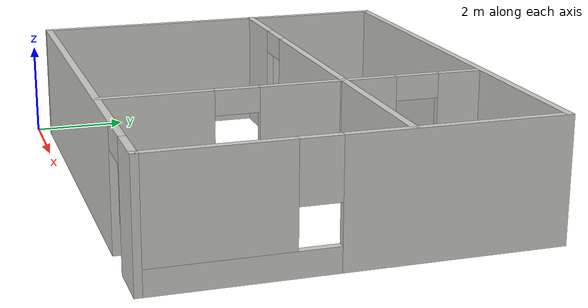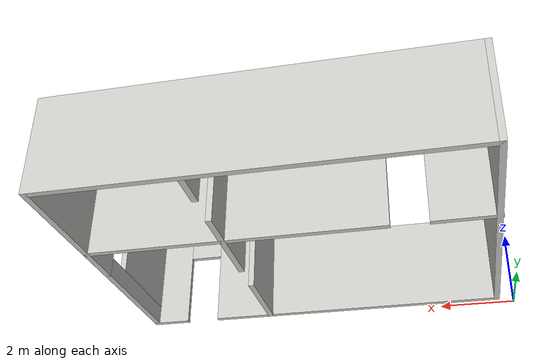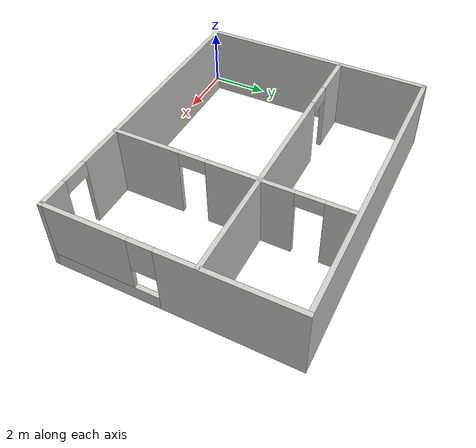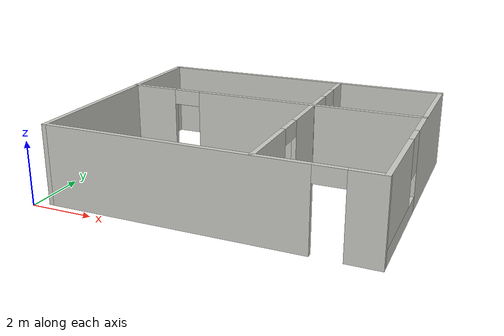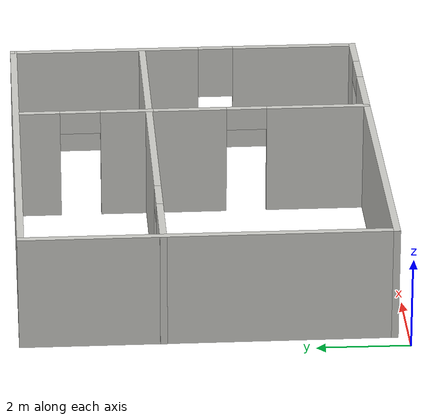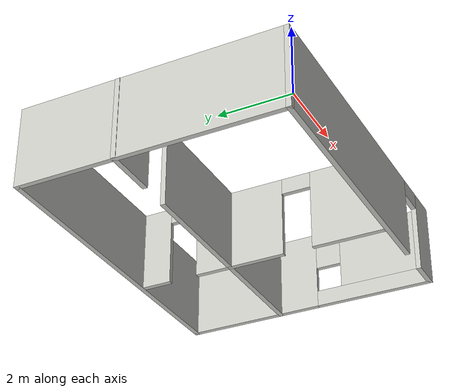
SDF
<?xml version='1.0'?>
<sdf version='1.6'>
  <model name='mybuilding'>
    <pose frame=''>5.19709 4.11693 0 0 -0 0</pose>
    <link name='Wall_10'>
      <pose frame=''>5.12209 0.116931 0 0 -0 -1.5708</pose>
      <visual name='Wall_10_Visual_0'>
        <pose frame=''>-1.82831 0 1.25 0 -0 0</pose>
        <geometry>
          <box>
            <size>4.34337 0.15 2.5</size>
          </box>
        </geometry>
        <material>
          <script>
            <uri>file://media/materials/scripts/gazebo.material</uri>
            <name>Gazebo/CeilingTiled</name>
          </script>
          <ambient>0.996078 0.47451 0.0196078 1</ambient>
        </material>
        <meta>
          <layer>0</layer>
        </meta>
      </visual>
      <collision name='Wall_10_Collision_0'>
        <geometry>
          <box>
            <size>4.34337 0.15 2.5</size>
          </box>
        </geometry>
        <pose frame=''>-1.82831 0 1.25 0 -0 0</pose>
      </collision>
      <visual name='Wall_10_Visual_1'>
        <pose frame=''>2.17169 0 0.25 0 -0 0</pose>
        <geometry>
          <box>
            <size>3.65663 0.15 0.5</size>
          </box>
        </geometry>
        <material>
          <script>
            <uri>file://media/materials/scripts/gazebo.material</uri>
            <name>Gazebo/CeilingTiled</name>
          </script>
          <ambient>0.996078 0.47451 0.0196078 1</ambient>
        </material>
        <meta>
          <layer>0</layer>
        </meta>
      </visual>
      <collision name='Wall_10_Collision_1'>
        <geometry>
          <box>
            <size>3.65663 0.15 0.5</size>
          </box>
        </geometry>
        <pose frame=''>2.17169 0 0.25 0 -0 0</pose>
      </collision>
      <visual name='Wall_10_Visual_2'>
        <pose frame=''>2.57168 0 1.5 0 -0 0</pose>
        <geometry>
          <box>
            <size>2.85663 0.15 2</size>
          </box>
        </geometry>
        <material>
          <script>
            <uri>file://media/materials/scripts/gazebo.material</uri>
            <name>Gazebo/CeilingTiled</name>
          </script>
          <ambient>0.996078 0.47451 0.0196078 1</ambient>
        </material>
        <meta>
          <layer>0</layer>
        </meta>
      </visual>
      <collision name='Wall_10_Collision_2'>
        <geometry>
          <box>
            <size>2.85663 0.15 2</size>
          </box>
        </geometry>
        <pose frame=''>2.57168 0 1.5 0 -0 0</pose>
      </collision>
      <visual name='Wall_10_Visual_3'>
        <pose frame=''>0.743369 0 1.9 0 -0 0</pose>
        <geometry>
          <box>
            <size>0.8 0.15 1.2</size>
          </box>
        </geometry>
        <material>
          <script>
            <uri>file://media/materials/scripts/gazebo.material</uri>
            <name>Gazebo/CeilingTiled</name>
          </script>
          <ambient>0.996078 0.47451 0.0196078 1</ambient>
        </material>
        <meta>
          <layer>0</layer>
        </meta>
      </visual>
      <collision name='Wall_10_Collision_3'>
        <geometry>
          <box>
            <size>0.8 0.15 1.2</size>
          </box>
        </geometry>
        <pose frame=''>0.743369 0 1.9 0 -0 0</pose>
      </collision>
    </link>
    <link name='Wall_11'>
      <pose frame=''>0.197086 -3.80807 0 0 -0 3.14159</pose>
      <visual name='Wall_11_Visual_0'>
        <pose frame=''>-4.4831 0 1.25 0 -0 0</pose>
        <geometry>
          <box>
            <size>1.0338 0.15 2.5</size>
          </box>
        </geometry>
        <material>
          <script>
            <uri>file://media/materials/scripts/gazebo.material</uri>
            <name>Gazebo/CeilingTiled</name>
          </script>
          <ambient>0.996078 0.47451 0.0196078 1</ambient>
        </material>
        <meta>
          <layer>0</layer>
        </meta>
      </visual>
      <collision name='Wall_11_Collision_0'>
        <geometry>
          <box>
            <size>1.0338 0.15 2.5</size>
          </box>
        </geometry>
        <pose frame=''>-4.4831 0 1.25 0 -0 0</pose>
      </collision>
      <visual name='Wall_11_Visual_1'>
        <pose frame=''>0.966901 0 1.25 0 -0 0</pose>
        <geometry>
          <box>
            <size>8.0662 0.15 2.5</size>
          </box>
        </geometry>
        <material>
          <script>
            <uri>file://media/materials/scripts/gazebo.material</uri>
            <name>Gazebo/CeilingTiled</name>
          </script>
          <ambient>0.996078 0.47451 0.0196078 1</ambient>
        </material>
        <meta>
          <layer>0</layer>
        </meta>
      </visual>
      <collision name='Wall_11_Collision_1'>
        <geometry>
          <box>
            <size>8.0662 0.15 2.5</size>
          </box>
        </geometry>
        <pose frame=''>0.966901 0 1.25 0 -0 0</pose>
      </collision>
      <visual name='Wall_11_Visual_2'>
        <pose frame=''>-3.5162 0 2.25 0 -0 0</pose>
        <geometry>
          <box>
            <size>0.9 0.15 0.5</size>
          </box>
        </geometry>
        <material>
          <script>
            <uri>file://media/materials/scripts/gazebo.material</uri>
            <name>Gazebo/CeilingTiled</name>
          </script>
          <ambient>0.996078 0.47451 0.0196078 1</ambient>
        </material>
        <meta>
          <layer>0</layer>
        </meta>
      </visual>
      <collision name='Wall_11_Collision_2'>
        <geometry>
          <box>
            <size>0.9 0.15 0.5</size>
          </box>
        </geometry>
        <pose frame=''>-3.5162 0 2.25 0 -0 0</pose>
      </collision>
    </link>
    <link name='Wall_12'>
      <collision name='Wall_12_Collision'>
        <geometry>
          <box>
            <size>8 0.15 2.5</size>
          </box>
        </geometry>
        <pose frame=''>0 0 1.25 0 -0 0</pose>
      </collision>
      <visual name='Wall_12_Visual'>
        <pose frame=''>0 0 1.25 0 -0 0</pose>
        <geometry>
          <box>
            <size>8 0.15 2.5</size>
          </box>
        </geometry>
        <material>
          <script>
            <uri>file://media/materials/scripts/gazebo.material</uri>
            <name>Gazebo/CeilingTiled</name>
          </script>
          <ambient>0.996078 0.47451 0.0196078 1</ambient>
        </material>
        <meta>
          <layer>0</layer>
        </meta>
      </visual>
      <pose frame=''>-4.72791 0.116931 0 0 -0 1.5708</pose>
    </link>
    <link name='Wall_22'>
      <pose frame=''>1.67028 -1.3772 0 0 -0 1.5708</pose>
      <visual name='Wall_22_Visual_0'>
        <pose frame=''>-1.34235 0 1.25 0 -0 0</pose>
        <geometry>
          <box>
            <size>2.3153 0.15 2.5</size>
          </box>
        </geometry>
        <material>
          <script>
            <uri>file://media/materials/scripts/gazebo.material</uri>
            <name>Gazebo/CeilingTiled</name>
          </script>
          <ambient>0.996078 0.47451 0.0196078 1</ambient>
        </material>
        <meta>
          <layer>0</layer>
        </meta>
      </visual>
      <collision name='Wall_22_Collision_0'>
        <geometry>
          <box>
            <size>2.3153 0.15 2.5</size>
          </box>
        </geometry>
        <pose frame=''>-1.34235 0 1.25 0 -0 0</pose>
      </collision>
      <visual name='Wall_22_Visual_1'>
        <pose frame=''>1.60765 0 1.25 0 -0 0</pose>
        <geometry>
          <box>
            <size>1.7847 0.15 2.5</size>
          </box>
        </geometry>
        <material>
          <script>
            <uri>file://media/materials/scripts/gazebo.material</uri>
            <name>Gazebo/CeilingTiled</name>
          </script>
          <ambient>0.996078 0.47451 0.0196078 1</ambient>
        </material>
        <meta>
          <layer>0</layer>
        </meta>
      </visual>
      <collision name='Wall_22_Collision_1'>
        <geometry>
          <box>
            <size>1.7847 0.15 2.5</size>
          </box>
        </geometry>
        <pose frame=''>1.60765 0 1.25 0 -0 0</pose>
      </collision>
      <visual name='Wall_22_Visual_2'>
        <pose frame=''>0.265296 0 2.25 0 -0 0</pose>
        <geometry>
          <box>
            <size>0.9 0.15 0.5</size>
          </box>
        </geometry>
        <material>
          <script>
            <uri>file://media/materials/scripts/gazebo.material</uri>
            <name>Gazebo/CeilingTiled</name>
          </script>
          <ambient>0.996078 0.47451 0.0196078 1</ambient>
        </material>
        <meta>
          <layer>0</layer>
        </meta>
      </visual>
      <collision name='Wall_22_Collision_2'>
        <geometry>
          <box>
            <size>0.9 0.15 0.5</size>
          </box>
        </geometry>
        <pose frame=''>0.265296 0 2.25 0 -0 0</pose>
      </collision>
    </link>
    <link name='Wall_24'>
      <pose frame=''>0.184002 1.0727 0 0 -0 3.14159</pose>
      <visual name='Wall_24_Visual_0'>
        <pose frame=''>-1.26331 0 1.25 0 -0 0</pose>
        <geometry>
          <box>
            <size>7.47338 0.15 2.5</size>
          </box>
        </geometry>
        <material>
          <script>
            <uri>file://media/materials/scripts/gazebo.material</uri>
            <name>Gazebo/CeilingTiled</name>
          </script>
          <ambient>0.996078 0.47451 0.0196078 1</ambient>
        </material>
        <meta>
          <layer>0</layer>
        </meta>
      </visual>
      <collision name='Wall_24_Collision_0'>
        <geometry>
          <box>
            <size>7.47338 0.15 2.5</size>
          </box>
        </geometry>
        <pose frame=''>-1.26331 0 1.25 0 -0 0</pose>
      </collision>
      <visual name='Wall_24_Visual_1'>
        <pose frame=''>4.18669 0 1.25 0 -0 0</pose>
        <geometry>
          <box>
            <size>1.62662 0.15 2.5</size>
          </box>
        </geometry>
        <material>
          <script>
            <uri>file://media/materials/scripts/gazebo.material</uri>
            <name>Gazebo/CeilingTiled</name>
          </script>
          <ambient>0.996078 0.47451 0.0196078 1</ambient>
        </material>
        <meta>
          <layer>0</layer>
        </meta>
      </visual>
      <collision name='Wall_24_Collision_1'>
        <geometry>
          <box>
            <size>1.62662 0.15 2.5</size>
          </box>
        </geometry>
        <pose frame=''>4.18669 0 1.25 0 -0 0</pose>
      </collision>
      <visual name='Wall_24_Visual_2'>
        <pose frame=''>2.92338 0 2.25 0 -0 0</pose>
        <geometry>
          <box>
            <size>0.9 0.15 0.5</size>
          </box>
        </geometry>
        <material>
          <script>
            <uri>file://media/materials/scripts/gazebo.material</uri>
            <name>Gazebo/CeilingTiled</name>
          </script>
          <ambient>0.996078 0.47451 0.0196078 1</ambient>
        </material>
        <meta>
          <layer>0</layer>
        </meta>
      </visual>
      <collision name='Wall_24_Collision_2'>
        <geometry>
          <box>
            <size>0.9 0.15 0.5</size>
          </box>
        </geometry>
        <pose frame=''>2.92338 0 2.25 0 -0 0</pose>
      </collision>
    </link>
    <link name='Wall_26'>
      <pose frame=''>1.67028 2.4728 0 0 -0 1.5708</pose>
      <visual name='Wall_26_Visual_0'>
        <pose frame=''>-0.906396 0 1.25 0 -0 0</pose>
        <geometry>
          <box>
            <size>1.18721 0.15 2.5</size>
          </box>
        </geometry>
        <material>
          <script>
            <uri>file://media/materials/scripts/gazebo.material</uri>
            <name>Gazebo/CeilingTiled</name>
          </script>
          <ambient>0.996078 0.47451 0.0196078 1</ambient>
        </material>
        <meta>
          <layer>0</layer>
        </meta>
      </visual>
      <collision name='Wall_26_Collision_0'>
        <geometry>
          <box>
            <size>1.18721 0.15 2.5</size>
          </box>
        </geometry>
        <pose frame=''>-0.906396 0 1.25 0 -0 0</pose>
      </collision>
      <visual name='Wall_26_Visual_1'>
        <pose frame=''>1.0436 0 1.25 0 -0 0</pose>
        <geometry>
          <box>
            <size>0.912791 0.15 2.5</size>
          </box>
        </geometry>
        <material>
          <script>
            <uri>file://media/materials/scripts/gazebo.material</uri>
            <name>Gazebo/CeilingTiled</name>
          </script>
          <ambient>0.996078 0.47451 0.0196078 1</ambient>
        </material>
        <meta>
          <layer>0</layer>
        </meta>
      </visual>
      <collision name='Wall_26_Collision_1'>
        <geometry>
          <box>
            <size>0.912791 0.15 2.5</size>
          </box>
        </geometry>
        <pose frame=''>1.0436 0 1.25 0 -0 0</pose>
      </collision>
      <visual name='Wall_26_Visual_2'>
        <pose frame=''>0.137209 0 2.25 0 -0 0</pose>
        <geometry>
          <box>
            <size>0.9 0.15 0.5</size>
          </box>
        </geometry>
        <material>
          <script>
            <uri>file://media/materials/scripts/gazebo.material</uri>
            <name>Gazebo/CeilingTiled</name>
          </script>
          <ambient>0.996078 0.47451 0.0196078 1</ambient>
        </material>
        <meta>
          <layer>0</layer>
        </meta>
      </visual>
      <collision name='Wall_26_Collision_2'>
        <geometry>
          <box>
            <size>0.9 0.15 0.5</size>
          </box>
        </geometry>
        <pose frame=''>0.137209 0 2.25 0 -0 0</pose>
      </collision>
    </link>
    <link name='Wall_9'>
      <collision name='Wall_9_Collision'>
        <geometry>
          <box>
            <size>10 0.15 2.5</size>
          </box>
        </geometry>
        <pose frame=''>0 0 1.25 0 -0 0</pose>
      </collision>
      <visual name='Wall_9_Visual'>
        <pose frame=''>0 0 1.25 0 -0 0</pose>
        <geometry>
          <box>
            <size>10 0.15 2.5</size>
          </box>
        </geometry>
        <material>
          <script>
            <uri>file://media/materials/scripts/gazebo.material</uri>
            <name>Gazebo/CeilingTiled</name>
          </script>
          <ambient>0.996078 0.47451 0.0196078 1</ambient>
        </material>
        <meta>
          <layer>0</layer>
        </meta>
      </visual>
      <pose frame=''>0.197086 4.04193 0 0 -0 0</pose>
    </link>
    <static>1</static>
  </model>
</sdf>
